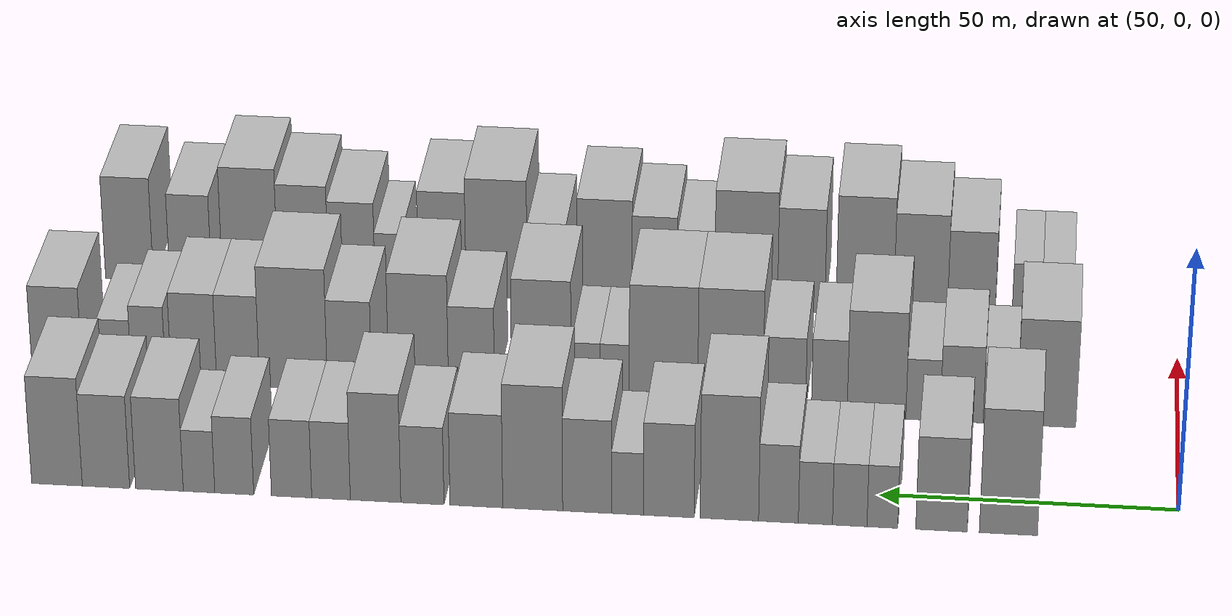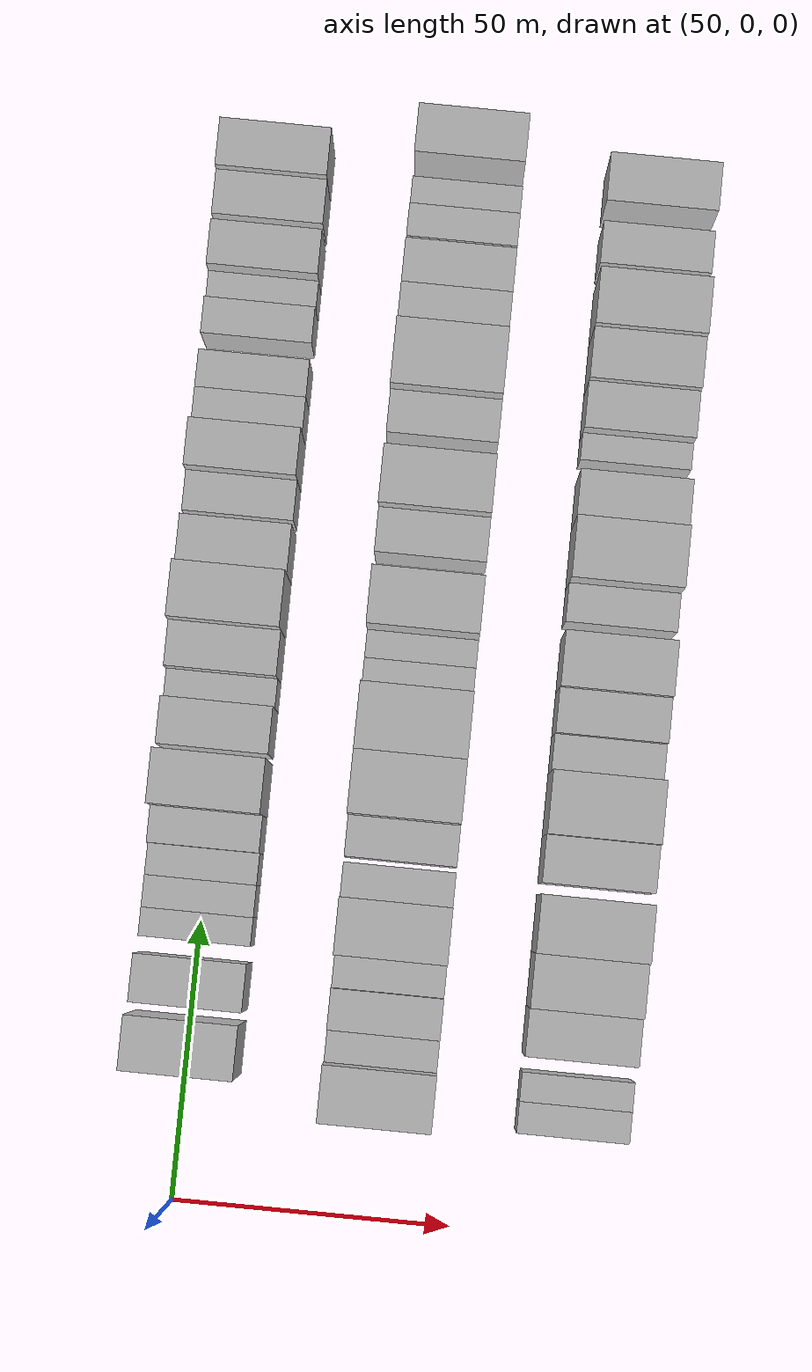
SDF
<sdf version="1.6">
 <world name="default">
  <model name="building_39">
   <static>1</static>
   <pose>50.0000 28.1894 0 0.000000 0.000000 0.000000</pose>
   <link name="link">
    <pose>0 0 12.00 0 0 0</pose>
    <collision name="collision"><geometry><box><size>20.0000 9.6129 24.0000</size></box></geometry></collision>
    <visual name="visual">
     <cast_shadows>0</cast_shadows>
     <geometry><box><size>20.0000 9.6129 24.0000</size></box></geometry>
     <material>
      <script>
       <uri>model://HANNAS_wall/materials/scripts</uri>
       <uri>model://HANNAS_wall/materials/textures</uri>
       <name>vrc/HANNAS_wall</name>
      </script>
     </material>
    </visual>
   </link>
  </model>
  <model name="building_40">
   <static>1</static>
   <pose>50.0000 39.2608 0 0.000000 0.000000 0.000000</pose>
   <link name="link">
    <pose>0 0 9.00 0 0 0</pose>
    <collision name="collision"><geometry><box><size>20.0000 8.5299 18.0000</size></box></geometry></collision>
    <visual name="visual">
     <cast_shadows>0</cast_shadows>
     <geometry><box><size>20.0000 8.5299 18.0000</size></box></geometry>
     <material>
      <script>
       <uri>model://HANNAS_wall/materials/scripts</uri>
       <uri>model://HANNAS_wall/materials/textures</uri>
       <name>vrc/HANNAS_wall</name>
      </script>
     </material>
    </visual>
   </link>
  </model>
  <model name="building_41">
   <static>1</static>
   <pose>50.0000 49.0732 0 0.000000 0.000000 0.000000</pose>
   <link name="link">
    <pose>0 0 6.00 0 0 0</pose>
    <collision name="collision"><geometry><box><size>20.0000 5.0948 12.0000</size></box></geometry></collision>
    <visual name="visual">
     <cast_shadows>0</cast_shadows>
     <geometry><box><size>20.0000 5.0948 12.0000</size></box></geometry>
     <material>
      <script>
       <uri>model://HANNAS_wall/materials/scripts</uri>
       <uri>model://HANNAS_wall/materials/textures</uri>
       <name>vrc/HANNAS_wall</name>
      </script>
     </material>
    </visual>
   </link>
  </model>
  <model name="building_42">
   <static>1</static>
   <pose>50.0000 54.4913 0 0.000000 0.000000 0.000000</pose>
   <link name="link">
    <pose>0 0 6.00 0 0 0</pose>
    <collision name="collision"><geometry><box><size>20.0000 5.7412 12.0000</size></box></geometry></collision>
    <visual name="visual">
     <cast_shadows>0</cast_shadows>
     <geometry><box><size>20.0000 5.7412 12.0000</size></box></geometry>
     <material>
      <script>
       <uri>model://HANNAS_wall/materials/scripts</uri>
       <uri>model://HANNAS_wall/materials/textures</uri>
       <name>vrc/HANNAS_wall</name>
      </script>
     </material>
    </visual>
   </link>
  </model>
  <model name="building_43">
   <static>1</static>
   <pose>50.0000 60.2013 0 0.000000 0.000000 0.000000</pose>
   <link name="link">
    <pose>0 0 6.00 0 0 0</pose>
    <collision name="collision"><geometry><box><size>20.0000 5.6789 12.0000</size></box></geometry></collision>
    <visual name="visual">
     <cast_shadows>0</cast_shadows>
     <geometry><box><size>20.0000 5.6789 12.0000</size></box></geometry>
     <material>
      <script>
       <uri>model://HANNAS_wall/materials/scripts</uri>
       <uri>model://HANNAS_wall/materials/textures</uri>
       <name>vrc/HANNAS_wall</name>
      </script>
     </material>
    </visual>
   </link>
  </model>
  <model name="building_44">
   <static>1</static>
   <pose>50.0000 66.3552 0 0.000000 0.000000 0.000000</pose>
   <link name="link">
    <pose>0 0 7.50 0 0 0</pose>
    <collision name="collision"><geometry><box><size>20.0000 6.6288 15.0000</size></box></geometry></collision>
    <visual name="visual">
     <cast_shadows>0</cast_shadows>
     <geometry><box><size>20.0000 6.6288 15.0000</size></box></geometry>
     <material>
      <script>
       <uri>model://HANNAS_wall/materials/scripts</uri>
       <uri>model://HANNAS_wall/materials/textures</uri>
       <name>vrc/HANNAS_wall</name>
      </script>
     </material>
    </visual>
   </link>
  </model>
  <model name="building_45">
   <static>1</static>
   <pose>50.0000 74.5443 0 0.000000 0.000000 0.000000</pose>
   <link name="link">
    <pose>0 0 12.00 0 0 0</pose>
    <collision name="collision"><geometry><box><size>20.0000 9.7496 24.0000</size></box></geometry></collision>
    <visual name="visual">
     <cast_shadows>0</cast_shadows>
     <geometry><box><size>20.0000 9.7496 24.0000</size></box></geometry>
     <material>
      <script>
       <uri>model://HANNAS_wall/materials/scripts</uri>
       <uri>model://HANNAS_wall/materials/textures</uri>
       <name>vrc/HANNAS_wall</name>
      </script>
     </material>
    </visual>
   </link>
  </model>
  <model name="building_46">
   <static>1</static>
   <pose>50.0000 84.6604 0 0.000000 0.000000 0.000000</pose>
   <link name="link">
    <pose>0 0 9.00 0 0 0</pose>
    <collision name="collision"><geometry><box><size>20.0000 8.4825 18.0000</size></box></geometry></collision>
    <visual name="visual">
     <cast_shadows>0</cast_shadows>
     <geometry><box><size>20.0000 8.4825 18.0000</size></box></geometry>
     <material>
      <script>
       <uri>model://HANNAS_wall/materials/scripts</uri>
       <uri>model://HANNAS_wall/materials/textures</uri>
       <name>vrc/HANNAS_wall</name>
      </script>
     </material>
    </visual>
   </link>
  </model>
  <model name="building_47">
   <static>1</static>
   <pose>50.0000 91.5790 0 0.000000 0.000000 0.000000</pose>
   <link name="link">
    <pose>0 0 6.00 0 0 0</pose>
    <collision name="collision"><geometry><box><size>20.0000 5.3546 12.0000</size></box></geometry></collision>
    <visual name="visual">
     <cast_shadows>0</cast_shadows>
     <geometry><box><size>20.0000 5.3546 12.0000</size></box></geometry>
     <material>
      <script>
       <uri>model://HANNAS_wall/materials/scripts</uri>
       <uri>model://HANNAS_wall/materials/textures</uri>
       <name>vrc/HANNAS_wall</name>
      </script>
     </material>
    </visual>
   </link>
  </model>
  <model name="building_48">
   <static>1</static>
   <pose>50.0000 98.3490 0 0.000000 0.000000 0.000000</pose>
   <link name="link">
    <pose>0 0 9.00 0 0 0</pose>
    <collision name="collision"><geometry><box><size>20.0000 8.1854 18.0000</size></box></geometry></collision>
    <visual name="visual">
     <cast_shadows>0</cast_shadows>
     <geometry><box><size>20.0000 8.1854 18.0000</size></box></geometry>
     <material>
      <script>
       <uri>model://HANNAS_wall/materials/scripts</uri>
       <uri>model://HANNAS_wall/materials/textures</uri>
       <name>vrc/HANNAS_wall</name>
      </script>
     </material>
    </visual>
   </link>
  </model>
  <model name="building_49">
   <static>1</static>
   <pose>50.0000 107.4781 0 0.000000 0.000000 0.000000</pose>
   <link name="link">
    <pose>0 0 12.00 0 0 0</pose>
    <collision name="collision"><geometry><box><size>20.0000 10.0729 24.0000</size></box></geometry></collision>
    <visual name="visual">
     <cast_shadows>0</cast_shadows>
     <geometry><box><size>20.0000 10.0729 24.0000</size></box></geometry>
     <material>
      <script>
       <uri>model://HANNAS_wall/materials/scripts</uri>
       <uri>model://HANNAS_wall/materials/textures</uri>
       <name>vrc/HANNAS_wall</name>
      </script>
     </material>
    </visual>
   </link>
  </model>
  <model name="building_50">
   <static>1</static>
   <pose>50.0000 116.9580 0 0.000000 0.000000 0.000000</pose>
   <link name="link">
    <pose>0 0 9.00 0 0 0</pose>
    <collision name="collision"><geometry><box><size>20.0000 8.8869 18.0000</size></box></geometry></collision>
    <visual name="visual">
     <cast_shadows>0</cast_shadows>
     <geometry><box><size>20.0000 8.8869 18.0000</size></box></geometry>
     <material>
      <script>
       <uri>model://HANNAS_wall/materials/scripts</uri>
       <uri>model://HANNAS_wall/materials/textures</uri>
       <name>vrc/HANNAS_wall</name>
      </script>
     </material>
    </visual>
   </link>
  </model>
  <model name="building_51">
   <static>1</static>
   <pose>50.0000 126.0447 0 0.000000 0.000000 0.000000</pose>
   <link name="link">
    <pose>0 0 7.50 0 0 0</pose>
    <collision name="collision"><geometry><box><size>20.0000 7.2864 15.0000</size></box></geometry></collision>
    <visual name="visual">
     <cast_shadows>0</cast_shadows>
     <geometry><box><size>20.0000 7.2864 15.0000</size></box></geometry>
     <material>
      <script>
       <uri>model://HANNAS_wall/materials/scripts</uri>
       <uri>model://HANNAS_wall/materials/textures</uri>
       <name>vrc/HANNAS_wall</name>
      </script>
     </material>
    </visual>
   </link>
  </model>
  <model name="building_52">
   <static>1</static>
   <pose>50.0000 133.9553 0 0.000000 0.000000 0.000000</pose>
   <link name="link">
    <pose>0 0 10.50 0 0 0</pose>
    <collision name="collision"><geometry><box><size>20.0000 8.5349 21.0000</size></box></geometry></collision>
    <visual name="visual">
     <cast_shadows>0</cast_shadows>
     <geometry><box><size>20.0000 8.5349 21.0000</size></box></geometry>
     <material>
      <script>
       <uri>model://HANNAS_wall/materials/scripts</uri>
       <uri>model://HANNAS_wall/materials/textures</uri>
       <name>vrc/HANNAS_wall</name>
      </script>
     </material>
    </visual>
   </link>
  </model>
  <model name="building_53">
   <static>1</static>
   <pose>50.0000 141.4899 0 0.000000 0.000000 0.000000</pose>
   <link name="link">
    <pose>0 0 7.50 0 0 0</pose>
    <collision name="collision"><geometry><box><size>20.0000 6.5343 15.0000</size></box></geometry></collision>
    <visual name="visual">
     <cast_shadows>0</cast_shadows>
     <geometry><box><size>20.0000 6.5343 15.0000</size></box></geometry>
     <material>
      <script>
       <uri>model://HANNAS_wall/materials/scripts</uri>
       <uri>model://HANNAS_wall/materials/textures</uri>
       <name>vrc/HANNAS_wall</name>
      </script>
     </material>
    </visual>
   </link>
  </model>
  <model name="building_54">
   <static>1</static>
   <pose>50.0000 148.1674 0 0.000000 0.000000 0.000000</pose>
   <link name="link">
    <pose>0 0 7.50 0 0 0</pose>
    <collision name="collision"><geometry><box><size>20.0000 6.8207 15.0000</size></box></geometry></collision>
    <visual name="visual">
     <cast_shadows>0</cast_shadows>
     <geometry><box><size>20.0000 6.8207 15.0000</size></box></geometry>
     <material>
      <script>
       <uri>model://HANNAS_wall/materials/scripts</uri>
       <uri>model://HANNAS_wall/materials/textures</uri>
       <name>vrc/HANNAS_wall</name>
      </script>
     </material>
    </visual>
   </link>
  </model>
  <model name="building_55">
   <static>1</static>
   <pose>50.0000 157.8848 0 0.000000 0.000000 0.000000</pose>
   <link name="link">
    <pose>0 0 7.50 0 0 0</pose>
    <collision name="collision"><geometry><box><size>20.0000 6.6143 15.0000</size></box></geometry></collision>
    <visual name="visual">
     <cast_shadows>0</cast_shadows>
     <geometry><box><size>20.0000 6.6143 15.0000</size></box></geometry>
     <material>
      <script>
       <uri>model://HANNAS_wall/materials/scripts</uri>
       <uri>model://HANNAS_wall/materials/textures</uri>
       <name>vrc/HANNAS_wall</name>
      </script>
     </material>
    </visual>
   </link>
  </model>
  <model name="building_56">
   <static>1</static>
   <pose>50.0000 163.8722 0 0.000000 0.000000 0.000000</pose>
   <link name="link">
    <pose>0 0 6.00 0 0 0</pose>
    <collision name="collision"><geometry><box><size>20.0000 5.3604 12.0000</size></box></geometry></collision>
    <visual name="visual">
     <cast_shadows>0</cast_shadows>
     <geometry><box><size>20.0000 5.3604 12.0000</size></box></geometry>
     <material>
      <script>
       <uri>model://HANNAS_wall/materials/scripts</uri>
       <uri>model://HANNAS_wall/materials/textures</uri>
       <name>vrc/HANNAS_wall</name>
      </script>
     </material>
    </visual>
   </link>
  </model>
  <model name="building_57">
   <static>1</static>
   <pose>50.0000 170.6138 0 0.000000 0.000000 0.000000</pose>
   <link name="link">
    <pose>0 0 9.00 0 0 0</pose>
    <collision name="collision"><geometry><box><size>20.0000 8.1227 18.0000</size></box></geometry></collision>
    <visual name="visual">
     <cast_shadows>0</cast_shadows>
     <geometry><box><size>20.0000 8.1227 18.0000</size></box></geometry>
     <material>
      <script>
       <uri>model://HANNAS_wall/materials/scripts</uri>
       <uri>model://HANNAS_wall/materials/textures</uri>
       <name>vrc/HANNAS_wall</name>
      </script>
     </material>
    </visual>
   </link>
  </model>
  <model name="building_58">
   <static>1</static>
   <pose>50.0000 179.7130 0 0.000000 0.000000 0.000000</pose>
   <link name="link">
    <pose>0 0 9.00 0 0 0</pose>
    <collision name="collision"><geometry><box><size>20.0000 8.0757 18.0000</size></box></geometry></collision>
    <visual name="visual">
     <cast_shadows>0</cast_shadows>
     <geometry><box><size>20.0000 8.0757 18.0000</size></box></geometry>
     <material>
      <script>
       <uri>model://HANNAS_wall/materials/scripts</uri>
       <uri>model://HANNAS_wall/materials/textures</uri>
       <name>vrc/HANNAS_wall</name>
      </script>
     </material>
    </visual>
   </link>
  </model>
  <model name="building_59">
   <static>1</static>
   <pose>50.0000 188.0741 0 0.000000 0.000000 0.000000</pose>
   <link name="link">
    <pose>0 0 10.50 0 0 0</pose>
    <collision name="collision"><geometry><box><size>20.0000 8.6463 21.0000</size></box></geometry></collision>
    <visual name="visual">
     <cast_shadows>0</cast_shadows>
     <geometry><box><size>20.0000 8.6463 21.0000</size></box></geometry>
     <material>
      <script>
       <uri>model://HANNAS_wall/materials/scripts</uri>
       <uri>model://HANNAS_wall/materials/textures</uri>
       <name>vrc/HANNAS_wall</name>
      </script>
     </material>
    </visual>
   </link>
  </model>
  <model name="building_122">
   <static>1</static>
   <pose>85.0000 22.6045 0 0.000000 0.000000 0.000000</pose>
   <link name="link">
    <pose>0 0 10.50 0 0 0</pose>
    <collision name="collision"><geometry><box><size>20.0000 10.1289 21.0000</size></box></geometry></collision>
    <visual name="visual">
     <cast_shadows>0</cast_shadows>
     <geometry><box><size>20.0000 10.1289 21.0000</size></box></geometry>
     <material>
      <script>
       <uri>model://HANNAS_wall/materials/scripts</uri>
       <uri>model://HANNAS_wall/materials/textures</uri>
       <name>vrc/HANNAS_wall</name>
      </script>
     </material>
    </visual>
   </link>
  </model>
  <model name="building_123">
   <static>1</static>
   <pose>85.0000 30.5372 0 0.000000 0.000000 0.000000</pose>
   <link name="link">
    <pose>0 0 6.00 0 0 0</pose>
    <collision name="collision"><geometry><box><size>20.0000 5.7364 12.0000</size></box></geometry></collision>
    <visual name="visual">
     <cast_shadows>0</cast_shadows>
     <geometry><box><size>20.0000 5.7364 12.0000</size></box></geometry>
     <material>
      <script>
       <uri>model://HANNAS_wall/materials/scripts</uri>
       <uri>model://HANNAS_wall/materials/textures</uri>
       <name>vrc/HANNAS_wall</name>
      </script>
     </material>
    </visual>
   </link>
  </model>
  <model name="building_124">
   <static>1</static>
   <pose>85.0000 37.0937 0 0.000000 0.000000 0.000000</pose>
   <link name="link">
    <pose>0 0 7.50 0 0 0</pose>
    <collision name="collision"><geometry><box><size>20.0000 7.3766 15.0000</size></box></geometry></collision>
    <visual name="visual">
     <cast_shadows>0</cast_shadows>
     <geometry><box><size>20.0000 7.3766 15.0000</size></box></geometry>
     <material>
      <script>
       <uri>model://HANNAS_wall/materials/scripts</uri>
       <uri>model://HANNAS_wall/materials/textures</uri>
       <name>vrc/HANNAS_wall</name>
      </script>
     </material>
    </visual>
   </link>
  </model>
  <model name="building_125">
   <static>1</static>
   <pose>85.0000 43.7400 0 0.000000 0.000000 0.000000</pose>
   <link name="link">
    <pose>0 0 6.00 0 0 0</pose>
    <collision name="collision"><geometry><box><size>20.0000 5.9160 12.0000</size></box></geometry></collision>
    <visual name="visual">
     <cast_shadows>0</cast_shadows>
     <geometry><box><size>20.0000 5.9160 12.0000</size></box></geometry>
     <material>
      <script>
       <uri>model://HANNAS_wall/materials/scripts</uri>
       <uri>model://HANNAS_wall/materials/textures</uri>
       <name>vrc/HANNAS_wall</name>
      </script>
     </material>
    </visual>
   </link>
  </model>
  <model name="building_126">
   <static>1</static>
   <pose>85.0000 51.7648 0 0.000000 0.000000 0.000000</pose>
   <link name="link">
    <pose>0 0 10.50 0 0 0</pose>
    <collision name="collision"><geometry><box><size>20.0000 10.1337 21.0000</size></box></geometry></collision>
    <visual name="visual">
     <cast_shadows>0</cast_shadows>
     <geometry><box><size>20.0000 10.1337 21.0000</size></box></geometry>
     <material>
      <script>
       <uri>model://HANNAS_wall/materials/scripts</uri>
       <uri>model://HANNAS_wall/materials/textures</uri>
       <name>vrc/HANNAS_wall</name>
      </script>
     </material>
    </visual>
   </link>
  </model>
  <model name="building_127">
   <static>1</static>
   <pose>85.0000 59.9177 0 0.000000 0.000000 0.000000</pose>
   <link name="link">
    <pose>0 0 7.50 0 0 0</pose>
    <collision name="collision"><geometry><box><size>20.0000 6.1720 15.0000</size></box></geometry></collision>
    <visual name="visual">
     <cast_shadows>0</cast_shadows>
     <geometry><box><size>20.0000 6.1720 15.0000</size></box></geometry>
     <material>
      <script>
       <uri>model://HANNAS_wall/materials/scripts</uri>
       <uri>model://HANNAS_wall/materials/textures</uri>
       <name>vrc/HANNAS_wall</name>
      </script>
     </material>
    </visual>
   </link>
  </model>
  <model name="building_128">
   <static>1</static>
   <pose>85.0000 67.6979 0 0.000000 0.000000 0.000000</pose>
   <link name="link">
    <pose>0 0 7.50 0 0 0</pose>
    <collision name="collision"><geometry><box><size>20.0000 7.3886 15.0000</size></box></geometry></collision>
    <visual name="visual">
     <cast_shadows>0</cast_shadows>
     <geometry><box><size>20.0000 7.3886 15.0000</size></box></geometry>
     <material>
      <script>
       <uri>model://HANNAS_wall/materials/scripts</uri>
       <uri>model://HANNAS_wall/materials/textures</uri>
       <name>vrc/HANNAS_wall</name>
      </script>
     </material>
    </visual>
   </link>
  </model>
  <model name="building_129">
   <static>1</static>
   <pose>85.0000 77.0301 0 0.000000 0.000000 0.000000</pose>
   <link name="link">
    <pose>0 0 12.00 0 0 0</pose>
    <collision name="collision"><geometry><box><size>20.0000 11.2756 24.0000</size></box></geometry></collision>
    <visual name="visual">
     <cast_shadows>0</cast_shadows>
     <geometry><box><size>20.0000 11.2756 24.0000</size></box></geometry>
     <material>
      <script>
       <uri>model://HANNAS_wall/materials/scripts</uri>
       <uri>model://HANNAS_wall/materials/textures</uri>
       <name>vrc/HANNAS_wall</name>
      </script>
     </material>
    </visual>
   </link>
  </model>
  <model name="building_130">
   <static>1</static>
   <pose>85.0000 88.6089 0 0.000000 0.000000 0.000000</pose>
   <link name="link">
    <pose>0 0 12.00 0 0 0</pose>
    <collision name="collision"><geometry><box><size>20.0000 11.8821 24.0000</size></box></geometry></collision>
    <visual name="visual">
     <cast_shadows>0</cast_shadows>
     <geometry><box><size>20.0000 11.8821 24.0000</size></box></geometry>
     <material>
      <script>
       <uri>model://HANNAS_wall/materials/scripts</uri>
       <uri>model://HANNAS_wall/materials/textures</uri>
       <name>vrc/HANNAS_wall</name>
      </script>
     </material>
    </visual>
   </link>
  </model>
  <model name="building_131">
   <static>1</static>
   <pose>85.0000 97.0865 0 0.000000 0.000000 0.000000</pose>
   <link name="link">
    <pose>0 0 6.00 0 0 0</pose>
    <collision name="collision"><geometry><box><size>20.0000 5.0732 12.0000</size></box></geometry></collision>
    <visual name="visual">
     <cast_shadows>0</cast_shadows>
     <geometry><box><size>20.0000 5.0732 12.0000</size></box></geometry>
     <material>
      <script>
       <uri>model://HANNAS_wall/materials/scripts</uri>
       <uri>model://HANNAS_wall/materials/textures</uri>
       <name>vrc/HANNAS_wall</name>
      </script>
     </material>
    </visual>
   </link>
  </model>
  <model name="building_132">
   <static>1</static>
   <pose>85.0000 102.1384 0 0.000000 0.000000 0.000000</pose>
   <link name="link">
    <pose>0 0 6.00 0 0 0</pose>
    <collision name="collision"><geometry><box><size>20.0000 5.0305 12.0000</size></box></geometry></collision>
    <visual name="visual">
     <cast_shadows>0</cast_shadows>
     <geometry><box><size>20.0000 5.0305 12.0000</size></box></geometry>
     <material>
      <script>
       <uri>model://HANNAS_wall/materials/scripts</uri>
       <uri>model://HANNAS_wall/materials/textures</uri>
       <name>vrc/HANNAS_wall</name>
      </script>
     </material>
    </visual>
   </link>
  </model>
  <model name="building_133">
   <static>1</static>
   <pose>85.0000 109.8253 0 0.000000 0.000000 0.000000</pose>
   <link name="link">
    <pose>0 0 12.00 0 0 0</pose>
    <collision name="collision"><geometry><box><size>20.0000 10.3434 24.0000</size></box></geometry></collision>
    <visual name="visual">
     <cast_shadows>0</cast_shadows>
     <geometry><box><size>20.0000 10.3434 24.0000</size></box></geometry>
     <material>
      <script>
       <uri>model://HANNAS_wall/materials/scripts</uri>
       <uri>model://HANNAS_wall/materials/textures</uri>
       <name>vrc/HANNAS_wall</name>
      </script>
     </material>
    </visual>
   </link>
  </model>
  <model name="building_134">
   <static>1</static>
   <pose>85.0000 122.0101 0 0.000000 0.000000 0.000000</pose>
   <link name="link">
    <pose>0 0 9.00 0 0 0</pose>
    <collision name="collision"><geometry><box><size>20.0000 8.0261 18.0000</size></box></geometry></collision>
    <visual name="visual">
     <cast_shadows>0</cast_shadows>
     <geometry><box><size>20.0000 8.0261 18.0000</size></box></geometry>
     <material>
      <script>
       <uri>model://HANNAS_wall/materials/scripts</uri>
       <uri>model://HANNAS_wall/materials/textures</uri>
       <name>vrc/HANNAS_wall</name>
      </script>
     </material>
    </visual>
   </link>
  </model>
  <model name="building_135">
   <static>1</static>
   <pose>85.0000 131.2413 0 0.000000 0.000000 0.000000</pose>
   <link name="link">
    <pose>0 0 12.00 0 0 0</pose>
    <collision name="collision"><geometry><box><size>20.0000 10.4363 24.0000</size></box></geometry></collision>
    <visual name="visual">
     <cast_shadows>0</cast_shadows>
     <geometry><box><size>20.0000 10.4363 24.0000</size></box></geometry>
     <material>
      <script>
       <uri>model://HANNAS_wall/materials/scripts</uri>
       <uri>model://HANNAS_wall/materials/textures</uri>
       <name>vrc/HANNAS_wall</name>
      </script>
     </material>
    </visual>
   </link>
  </model>
  <model name="building_136">
   <static>1</static>
   <pose>85.0000 143.3449 0 0.000000 0.000000 0.000000</pose>
   <link name="link">
    <pose>0 0 9.00 0 0 0</pose>
    <collision name="collision"><geometry><box><size>20.0000 7.7708 18.0000</size></box></geometry></collision>
    <visual name="visual">
     <cast_shadows>0</cast_shadows>
     <geometry><box><size>20.0000 7.7708 18.0000</size></box></geometry>
     <material>
      <script>
       <uri>model://HANNAS_wall/materials/scripts</uri>
       <uri>model://HANNAS_wall/materials/textures</uri>
       <name>vrc/HANNAS_wall</name>
      </script>
     </material>
    </visual>
   </link>
  </model>
  <model name="building_137">
   <static>1</static>
   <pose>85.0000 153.2087 0 0.000000 0.000000 0.000000</pose>
   <link name="link">
    <pose>0 0 12.00 0 0 0</pose>
    <collision name="collision"><geometry><box><size>20.0000 11.9567 24.0000</size></box></geometry></collision>
    <visual name="visual">
     <cast_shadows>0</cast_shadows>
     <geometry><box><size>20.0000 11.9567 24.0000</size></box></geometry>
     <material>
      <script>
       <uri>model://HANNAS_wall/materials/scripts</uri>
       <uri>model://HANNAS_wall/materials/textures</uri>
       <name>vrc/HANNAS_wall</name>
      </script>
     </material>
    </visual>
   </link>
  </model>
  <model name="building_138">
   <static>1</static>
   <pose>85.0000 162.9615 0 0.000000 0.000000 0.000000</pose>
   <link name="link">
    <pose>0 0 9.00 0 0 0</pose>
    <collision name="collision"><geometry><box><size>20.0000 7.5490 18.0000</size></box></geometry></collision>
    <visual name="visual">
     <cast_shadows>0</cast_shadows>
     <geometry><box><size>20.0000 7.5490 18.0000</size></box></geometry>
     <material>
      <script>
       <uri>model://HANNAS_wall/materials/scripts</uri>
       <uri>model://HANNAS_wall/materials/textures</uri>
       <name>vrc/HANNAS_wall</name>
      </script>
     </material>
    </visual>
   </link>
  </model>
  <model name="building_139">
   <static>1</static>
   <pose>85.0000 170.7285 0 0.000000 0.000000 0.000000</pose>
   <link name="link">
    <pose>0 0 9.00 0 0 0</pose>
    <collision name="collision"><geometry><box><size>20.0000 7.9849 18.0000</size></box></geometry></collision>
    <visual name="visual">
     <cast_shadows>0</cast_shadows>
     <geometry><box><size>20.0000 7.9849 18.0000</size></box></geometry>
     <material>
      <script>
       <uri>model://HANNAS_wall/materials/scripts</uri>
       <uri>model://HANNAS_wall/materials/textures</uri>
       <name>vrc/HANNAS_wall</name>
      </script>
     </material>
    </visual>
   </link>
  </model>
  <model name="building_140">
   <static>1</static>
   <pose>85.0000 178.7456 0 0.000000 0.000000 0.000000</pose>
   <link name="link">
    <pose>0 0 7.50 0 0 0</pose>
    <collision name="collision"><geometry><box><size>20.0000 6.0494 15.0000</size></box></geometry></collision>
    <visual name="visual">
     <cast_shadows>0</cast_shadows>
     <geometry><box><size>20.0000 6.0494 15.0000</size></box></geometry>
     <material>
      <script>
       <uri>model://HANNAS_wall/materials/scripts</uri>
       <uri>model://HANNAS_wall/materials/textures</uri>
       <name>vrc/HANNAS_wall</name>
      </script>
     </material>
    </visual>
   </link>
  </model>
  <model name="building_141">
   <static>1</static>
   <pose>85.0000 184.6085 0 0.000000 0.000000 0.000000</pose>
   <link name="link">
    <pose>0 0 6.00 0 0 0</pose>
    <collision name="collision"><geometry><box><size>20.0000 5.6766 12.0000</size></box></geometry></collision>
    <visual name="visual">
     <cast_shadows>0</cast_shadows>
     <geometry><box><size>20.0000 5.6766 12.0000</size></box></geometry>
     <material>
      <script>
       <uri>model://HANNAS_wall/materials/scripts</uri>
       <uri>model://HANNAS_wall/materials/textures</uri>
       <name>vrc/HANNAS_wall</name>
      </script>
     </material>
    </visual>
   </link>
  </model>
  <model name="building_142">
   <static>1</static>
   <pose>85.0000 194.8877 0 0.000000 0.000000 0.000000</pose>
   <link name="link">
    <pose>0 0 9.00 0 0 0</pose>
    <collision name="collision"><geometry><box><size>20.0000 8.8818 18.0000</size></box></geometry></collision>
    <visual name="visual">
     <cast_shadows>0</cast_shadows>
     <geometry><box><size>20.0000 8.8818 18.0000</size></box></geometry>
     <material>
      <script>
       <uri>model://HANNAS_wall/materials/scripts</uri>
       <uri>model://HANNAS_wall/materials/textures</uri>
       <name>vrc/HANNAS_wall</name>
      </script>
     </material>
    </visual>
   </link>
  </model>
  <model name="building_204">
   <static>1</static>
   <pose>120.0000 21.4025 0 0.000000 0.000000 0.000000</pose>
   <link name="link">
    <pose>0 0 6.00 0 0 0</pose>
    <collision name="collision"><geometry><box><size>20.0000 5.5973 12.0000</size></box></geometry></collision>
    <visual name="visual">
     <cast_shadows>0</cast_shadows>
     <geometry><box><size>20.0000 5.5973 12.0000</size></box></geometry>
     <material>
      <script>
       <uri>model://HANNAS_wall/materials/scripts</uri>
       <uri>model://HANNAS_wall/materials/textures</uri>
       <name>vrc/HANNAS_wall</name>
      </script>
     </material>
    </visual>
   </link>
  </model>
  <model name="building_205">
   <static>1</static>
   <pose>120.0000 26.7832 0 0.000000 0.000000 0.000000</pose>
   <link name="link">
    <pose>0 0 6.00 0 0 0</pose>
    <collision name="collision"><geometry><box><size>20.0000 5.1640 12.0000</size></box></geometry></collision>
    <visual name="visual">
     <cast_shadows>0</cast_shadows>
     <geometry><box><size>20.0000 5.1640 12.0000</size></box></geometry>
     <material>
      <script>
       <uri>model://HANNAS_wall/materials/scripts</uri>
       <uri>model://HANNAS_wall/materials/textures</uri>
       <name>vrc/HANNAS_wall</name>
      </script>
     </material>
    </visual>
   </link>
  </model>
  <model name="building_206">
   <static>1</static>
   <pose>120.0000 36.6041 0 0.000000 0.000000 0.000000</pose>
   <link name="link">
    <pose>0 0 9.00 0 0 0</pose>
    <collision name="collision"><geometry><box><size>20.0000 8.4778 18.0000</size></box></geometry></collision>
    <visual name="visual">
     <cast_shadows>0</cast_shadows>
     <geometry><box><size>20.0000 8.4778 18.0000</size></box></geometry>
     <material>
      <script>
       <uri>model://HANNAS_wall/materials/scripts</uri>
       <uri>model://HANNAS_wall/materials/textures</uri>
       <name>vrc/HANNAS_wall</name>
      </script>
     </material>
    </visual>
   </link>
  </model>
  <model name="building_207">
   <static>1</static>
   <pose>120.0000 45.6395 0 0.000000 0.000000 0.000000</pose>
   <link name="link">
    <pose>0 0 10.50 0 0 0</pose>
    <collision name="collision"><geometry><box><size>20.0000 9.5930 21.0000</size></box></geometry></collision>
    <visual name="visual">
     <cast_shadows>0</cast_shadows>
     <geometry><box><size>20.0000 9.5930 21.0000</size></box></geometry>
     <material>
      <script>
       <uri>model://HANNAS_wall/materials/scripts</uri>
       <uri>model://HANNAS_wall/materials/textures</uri>
       <name>vrc/HANNAS_wall</name>
      </script>
     </material>
    </visual>
   </link>
  </model>
  <model name="building_208">
   <static>1</static>
   <pose>120.0000 55.5803 0 0.000000 0.000000 0.000000</pose>
   <link name="link">
    <pose>0 0 12.00 0 0 0</pose>
    <collision name="collision"><geometry><box><size>20.0000 10.2885 24.0000</size></box></geometry></collision>
    <visual name="visual">
     <cast_shadows>0</cast_shadows>
     <geometry><box><size>20.0000 10.2885 24.0000</size></box></geometry>
     <material>
      <script>
       <uri>model://HANNAS_wall/materials/scripts</uri>
       <uri>model://HANNAS_wall/materials/textures</uri>
       <name>vrc/HANNAS_wall</name>
      </script>
     </material>
    </visual>
   </link>
  </model>
  <model name="building_209">
   <static>1</static>
   <pose>120.0000 66.9605 0 0.000000 0.000000 0.000000</pose>
   <link name="link">
    <pose>0 0 10.50 0 0 0</pose>
    <collision name="collision"><geometry><box><size>20.0000 8.4719 21.0000</size></box></geometry></collision>
    <visual name="visual">
     <cast_shadows>0</cast_shadows>
     <geometry><box><size>20.0000 8.4719 21.0000</size></box></geometry>
     <material>
      <script>
       <uri>model://HANNAS_wall/materials/scripts</uri>
       <uri>model://HANNAS_wall/materials/textures</uri>
       <name>vrc/HANNAS_wall</name>
      </script>
     </material>
    </visual>
   </link>
  </model>
  <model name="building_210">
   <static>1</static>
   <pose>120.0000 76.8230 0 0.000000 0.000000 0.000000</pose>
   <link name="link">
    <pose>0 0 12.00 0 0 0</pose>
    <collision name="collision"><geometry><box><size>20.0000 11.2530 24.0000</size></box></geometry></collision>
    <visual name="visual">
     <cast_shadows>0</cast_shadows>
     <geometry><box><size>20.0000 11.2530 24.0000</size></box></geometry>
     <material>
      <script>
       <uri>model://HANNAS_wall/materials/scripts</uri>
       <uri>model://HANNAS_wall/materials/textures</uri>
       <name>vrc/HANNAS_wall</name>
      </script>
     </material>
    </visual>
   </link>
  </model>
  <model name="building_211">
   <static>1</static>
   <pose>120.0000 85.8357 0 0.000000 0.000000 0.000000</pose>
   <link name="link">
    <pose>0 0 7.50 0 0 0</pose>
    <collision name="collision"><geometry><box><size>20.0000 6.7725 15.0000</size></box></geometry></collision>
    <visual name="visual">
     <cast_shadows>0</cast_shadows>
     <geometry><box><size>20.0000 6.7725 15.0000</size></box></geometry>
     <material>
      <script>
       <uri>model://HANNAS_wall/materials/scripts</uri>
       <uri>model://HANNAS_wall/materials/textures</uri>
       <name>vrc/HANNAS_wall</name>
      </script>
     </material>
    </visual>
   </link>
  </model>
  <model name="building_212">
   <static>1</static>
   <pose>120.0000 93.2561 0 0.000000 0.000000 0.000000</pose>
   <link name="link">
    <pose>0 0 9.00 0 0 0</pose>
    <collision name="collision"><geometry><box><size>20.0000 8.0682 18.0000</size></box></geometry></collision>
    <visual name="visual">
     <cast_shadows>0</cast_shadows>
     <geometry><box><size>20.0000 8.0682 18.0000</size></box></geometry>
     <material>
      <script>
       <uri>model://HANNAS_wall/materials/scripts</uri>
       <uri>model://HANNAS_wall/materials/textures</uri>
       <name>vrc/HANNAS_wall</name>
      </script>
     </material>
    </visual>
   </link>
  </model>
  <model name="building_213">
   <static>1</static>
   <pose>120.0000 102.2602 0 0.000000 0.000000 0.000000</pose>
   <link name="link">
    <pose>0 0 10.50 0 0 0</pose>
    <collision name="collision"><geometry><box><size>20.0000 9.9399 21.0000</size></box></geometry></collision>
    <visual name="visual">
     <cast_shadows>0</cast_shadows>
     <geometry><box><size>20.0000 9.9399 21.0000</size></box></geometry>
     <material>
      <script>
       <uri>model://HANNAS_wall/materials/scripts</uri>
       <uri>model://HANNAS_wall/materials/textures</uri>
       <name>vrc/HANNAS_wall</name>
      </script>
     </material>
    </visual>
   </link>
  </model>
  <model name="building_214">
   <static>1</static>
   <pose>120.0000 112.7206 0 0.000000 0.000000 0.000000</pose>
   <link name="link">
    <pose>0 0 7.50 0 0 0</pose>
    <collision name="collision"><geometry><box><size>20.0000 6.9808 15.0000</size></box></geometry></collision>
    <visual name="visual">
     <cast_shadows>0</cast_shadows>
     <geometry><box><size>20.0000 6.9808 15.0000</size></box></geometry>
     <material>
      <script>
       <uri>model://HANNAS_wall/materials/scripts</uri>
       <uri>model://HANNAS_wall/materials/textures</uri>
       <name>vrc/HANNAS_wall</name>
      </script>
     </material>
    </visual>
   </link>
  </model>
  <model name="building_215">
   <static>1</static>
   <pose>120.0000 121.7359 0 0.000000 0.000000 0.000000</pose>
   <link name="link">
    <pose>0 0 12.00 0 0 0</pose>
    <collision name="collision"><geometry><box><size>20.0000 11.0499 24.0000</size></box></geometry></collision>
    <visual name="visual">
     <cast_shadows>0</cast_shadows>
     <geometry><box><size>20.0000 11.0499 24.0000</size></box></geometry>
     <material>
      <script>
       <uri>model://HANNAS_wall/materials/scripts</uri>
       <uri>model://HANNAS_wall/materials/textures</uri>
       <name>vrc/HANNAS_wall</name>
      </script>
     </material>
    </visual>
   </link>
  </model>
  <model name="building_216">
   <static>1</static>
   <pose>120.0000 131.5644 0 0.000000 0.000000 0.000000</pose>
   <link name="link">
    <pose>0 0 10.50 0 0 0</pose>
    <collision name="collision"><geometry><box><size>20.0000 8.6071 21.0000</size></box></geometry></collision>
    <visual name="visual">
     <cast_shadows>0</cast_shadows>
     <geometry><box><size>20.0000 8.6071 21.0000</size></box></geometry>
     <material>
      <script>
       <uri>model://HANNAS_wall/materials/scripts</uri>
       <uri>model://HANNAS_wall/materials/textures</uri>
       <name>vrc/HANNAS_wall</name>
      </script>
     </material>
    </visual>
   </link>
  </model>
  <model name="building_217">
   <static>1</static>
   <pose>120.0000 141.3160 0 0.000000 0.000000 0.000000</pose>
   <link name="link">
    <pose>0 0 6.00 0 0 0</pose>
    <collision name="collision"><geometry><box><size>20.0000 4.8961 12.0000</size></box></geometry></collision>
    <visual name="visual">
     <cast_shadows>0</cast_shadows>
     <geometry><box><size>20.0000 4.8961 12.0000</size></box></geometry>
     <material>
      <script>
       <uri>model://HANNAS_wall/materials/scripts</uri>
       <uri>model://HANNAS_wall/materials/textures</uri>
       <name>vrc/HANNAS_wall</name>
      </script>
     </material>
    </visual>
   </link>
  </model>
  <model name="building_218">
   <static>1</static>
   <pose>120.0000 147.9885 0 0.000000 0.000000 0.000000</pose>
   <link name="link">
    <pose>0 0 9.00 0 0 0</pose>
    <collision name="collision"><geometry><box><size>20.0000 8.4489 18.0000</size></box></geometry></collision>
    <visual name="visual">
     <cast_shadows>0</cast_shadows>
     <geometry><box><size>20.0000 8.4489 18.0000</size></box></geometry>
     <material>
      <script>
       <uri>model://HANNAS_wall/materials/scripts</uri>
       <uri>model://HANNAS_wall/materials/textures</uri>
       <name>vrc/HANNAS_wall</name>
      </script>
     </material>
    </visual>
   </link>
  </model>
  <model name="building_219">
   <static>1</static>
   <pose>120.0000 156.8143 0 0.000000 0.000000 0.000000</pose>
   <link name="link">
    <pose>0 0 10.50 0 0 0</pose>
    <collision name="collision"><geometry><box><size>20.0000 9.2026 21.0000</size></box></geometry></collision>
    <visual name="visual">
     <cast_shadows>0</cast_shadows>
     <geometry><box><size>20.0000 9.2026 21.0000</size></box></geometry>
     <material>
      <script>
       <uri>model://HANNAS_wall/materials/scripts</uri>
       <uri>model://HANNAS_wall/materials/textures</uri>
       <name>vrc/HANNAS_wall</name>
      </script>
     </material>
    </visual>
   </link>
  </model>
  <model name="building_220">
   <static>1</static>
   <pose>120.0000 166.4856 0 0.000000 0.000000 0.000000</pose>
   <link name="link">
    <pose>0 0 12.00 0 0 0</pose>
    <collision name="collision"><geometry><box><size>20.0000 10.1400 24.0000</size></box></geometry></collision>
    <visual name="visual">
     <cast_shadows>0</cast_shadows>
     <geometry><box><size>20.0000 10.1400 24.0000</size></box></geometry>
     <material>
      <script>
       <uri>model://HANNAS_wall/materials/scripts</uri>
       <uri>model://HANNAS_wall/materials/textures</uri>
       <name>vrc/HANNAS_wall</name>
      </script>
     </material>
    </visual>
   </link>
  </model>
  <model name="building_221">
   <static>1</static>
   <pose>120.0000 177.3798 0 0.000000 0.000000 0.000000</pose>
   <link name="link">
    <pose>0 0 9.00 0 0 0</pose>
    <collision name="collision"><geometry><box><size>20.0000 7.6485 18.0000</size></box></geometry></collision>
    <visual name="visual">
     <cast_shadows>0</cast_shadows>
     <geometry><box><size>20.0000 7.6485 18.0000</size></box></geometry>
     <material>
      <script>
       <uri>model://HANNAS_wall/materials/scripts</uri>
       <uri>model://HANNAS_wall/materials/textures</uri>
       <name>vrc/HANNAS_wall</name>
      </script>
     </material>
    </visual>
   </link>
  </model>
  <model name="building_222">
   <static>1</static>
   <pose>120.0000 188.5839 0 0.000000 0.000000 0.000000</pose>
   <link name="link">
    <pose>0 0 10.50 0 0 0</pose>
    <collision name="collision"><geometry><box><size>20.0000 8.7596 21.0000</size></box></geometry></collision>
    <visual name="visual">
     <cast_shadows>0</cast_shadows>
     <geometry><box><size>20.0000 8.7596 21.0000</size></box></geometry>
     <material>
      <script>
       <uri>model://HANNAS_wall/materials/scripts</uri>
       <uri>model://HANNAS_wall/materials/textures</uri>
       <name>vrc/HANNAS_wall</name>
      </script>
     </material>
    </visual>
   </link>
  </model>
 </world>
</sdf>
